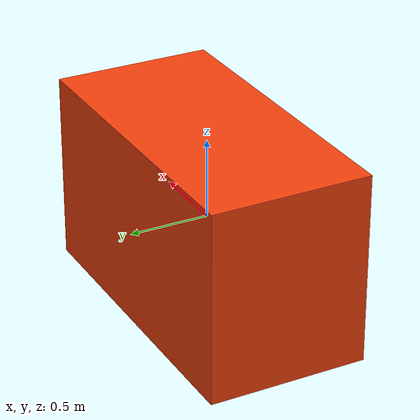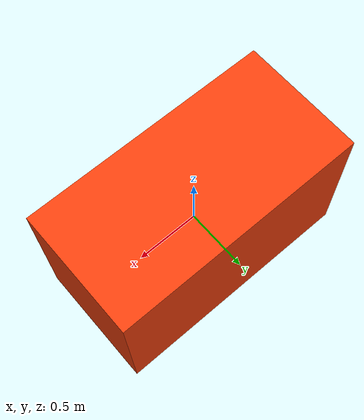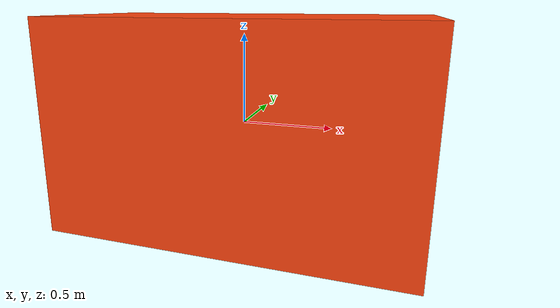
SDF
<?xml version="1.0"?>
<sdf version="1.9">
  <model name="dtu_partial_road_box">
    <static>true</static>
    <link name="box_link">
      <collision name="collision">
        <geometry>
          <box>
            <size>2.0 1.0 1.2</size>
          </box>
        </geometry>
        <surface>
          <friction>
            <ode>
              <mu>1.0</mu>
              <mu2>1.0</mu2>
            </ode>
          </friction>
        </surface>
      </collision>
      <visual name="visual">
        <geometry>
          <box>
            <size>2.0 1.0 1.2</size>
          </box>
        </geometry>
        <material>
          <ambient>0.95 0.25 0.05 1.0</ambient>
          <diffuse>0.95 0.25 0.05 1.0</diffuse>
        </material>
      </visual>
    </link>
  </model>
</sdf>
